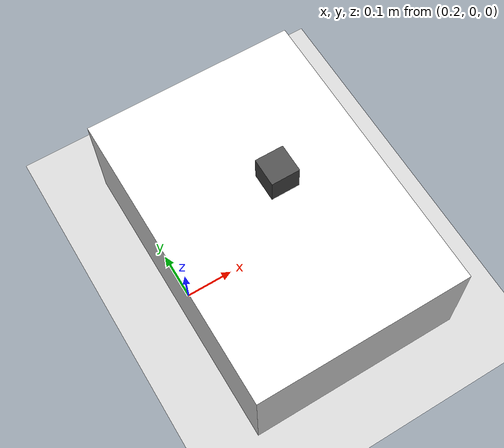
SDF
<sdf version="1.7">
 <world name="panda_pick_and_place">
  <light name="sun" type="directional">
   <pose>0 0 10 0 -0 0</pose>
   <diffuse>0.8 0.8 0.8 1</diffuse>
   <specular>0.2 0.2 0.2 1</specular>
   <attenuation>
    <range>1000</range>
    <constant>0.9</constant>
    <linear>0.01</linear>
    <quadratic>0.001</quadratic>
   </attenuation>
   <direction>-0.5 0.1 -0.9</direction>
   <spot><inner_angle>0</inner_angle><outer_angle>0</outer_angle><falloff>0</falloff></spot>
  </light>
  <model name="ground_plane">
   <static>1</static>
   <link name="link">
    <collision name="collision">
     <geometry><plane><normal>0 0 1</normal><size>100 100</size></plane></geometry>
     <surface>
      <contact><collide_bitmask>65535</collide_bitmask></contact>
      <friction><ode><mu>100</mu><mu2>50</mu2></ode></friction>
     </surface>
    </collision>
    <visual name="visual">
     <cast_shadows>0</cast_shadows>
     <geometry><plane><normal>0 0 1</normal><size>100 100</size></plane></geometry>
     <material>
      <script><uri>file://media/materials/scripts/gazebo.material</uri><name>Gazebo/Grey</name></script>
     </material>
    </visual>
   </link>
  </model>
  <model name="platform">
   <link name="link">
    <inertial>
     <mass>10</mass>
     <inertia>
      <ixx>0.166667</ixx>
      <ixy>0</ixy>
      <ixz>0</ixz>
      <iyy>0.166667</iyy>
      <iyz>0</iyz>
      <izz>0.166667</izz>
     </inertia>
    </inertial>
    <visual name="visual">
     <geometry><box><size>0.453157 0.642049 0.228432</size></box></geometry>
     <material>
      <script><uri>file://media/materials/scripts/gazebo.material</uri><name>Gazebo/White</name></script>
      <shader type="pixel"/>
     </material>
    </visual>
    <collision name="collision">
     <geometry><box><size>0.453157 0.642049 0.228432</size></box></geometry>
     <surface>
      <friction>
       <ode><mu>1</mu><mu2>1</mu2><fdir1>0 0 0</fdir1><slip1>0</slip1><slip2>0</slip2></ode>
       <torsional>
        <coefficient>1</coefficient>
        <patch_radius>0</patch_radius>
        <surface_radius>0</surface_radius>
        <use_patch_radius>1</use_patch_radius>
        <ode><slip>0</slip></ode>
       </torsional>
      </friction>
      <bounce><restitution_coefficient>0</restitution_coefficient><threshold>1e+06</threshold></bounce>
      <contact>
       <collide_without_contact>0</collide_without_contact>
       <collide_without_contact_bitmask>1</collide_without_contact_bitmask>
       <collide_bitmask>1</collide_bitmask>
       <ode>
        <soft_cfm>0</soft_cfm>
        <soft_erp>0.2</soft_erp>
        <kp>1e+13</kp>
        <kd>1</kd>
        <max_vel>0.01</max_vel>
        <min_depth>0</min_depth>
       </ode>
       <bullet>
        <split_impulse>1</split_impulse>
        <split_impulse_penetration_threshold>-0.01</split_impulse_penetration_threshold>
        <soft_cfm>0</soft_cfm>
        <soft_erp>0.2</soft_erp>
        <kp>1e+13</kp>
        <kd>1</kd>
       </bullet>
      </contact>
     </surface>
    </collision>
   </link>
   <static>1</static>
   <pose>0.4 0 0.114613 0 -0 0</pose>
  </model>
  <model name="cube">
   <link name="link">
    <inertial>
     <pose>0.03 0.03 0.03 0 -0 0</pose>
     <mass>0.12744</mass>
     <inertia>
      <ixx>7.6464e-05</ixx>
      <ixy>0</ixy>
      <ixz>0</ixz>
      <iyy>7.6464e-05</iyy>
      <iyz>0</iyz>
      <izz>7.6464e-05</izz>
     </inertia>
    </inertial>
    <visual name="visual">
     <pose>0.03 0.03 0.03 0 -0 0</pose>
     <geometry><box><size>0.06 0.06 0.06</size></box></geometry>
     <material>
      <script><uri>file://media/materials/scripts/gazebo.material</uri><name>Gazebo/DarkGrey</name></script>
      <shader type="pixel"/>
     </material>
    </visual>
    <collision name="collision">
     <pose>0.03 0.03 0.03 0 -0 0</pose>
     <geometry><box><size>0.06 0.06 0.06</size></box></geometry>
     <surface>
      <friction>
       <ode><mu>0.6</mu><mu2>0.6</mu2></ode>
       <bullet><friction>0.6</friction><friction2>0.6</friction2></bullet>
      </friction>
      <contact><collide_bitmask>1</collide_bitmask><ode><min_depth>0.002</min_depth></ode></contact>
     </surface>
    </collision>
   </link>
   <pose>0.4 -0 0.227959 0 -0 0</pose>
  </model>
  <plugin name="panda_joint_locker" filename="libpanda_gazebo.so"/>
  <gravity>0 0 -9.8</gravity>
  <magnetic_field>6e-06 2.3e-05 -4.2e-05</magnetic_field>
  <atmosphere type="adiabatic"/>
  <physics type="ode">
   <max_step_size>0.001</max_step_size>
   <real_time_factor>1</real_time_factor>
   <real_time_update_rate>1000</real_time_update_rate>
  </physics>
  <scene><ambient>0.4 0.4 0.4 1</ambient><background>0.7 0.7 0.7 1</background><shadows>1</shadows></scene>
  <spherical_coordinates>
   <surface_model>EARTH_WGS84</surface_model>
   <latitude_deg>0</latitude_deg>
   <longitude_deg>0</longitude_deg>
   <elevation>0</elevation>
   <heading_deg>0</heading_deg>
  </spherical_coordinates>
 </world>
</sdf>
